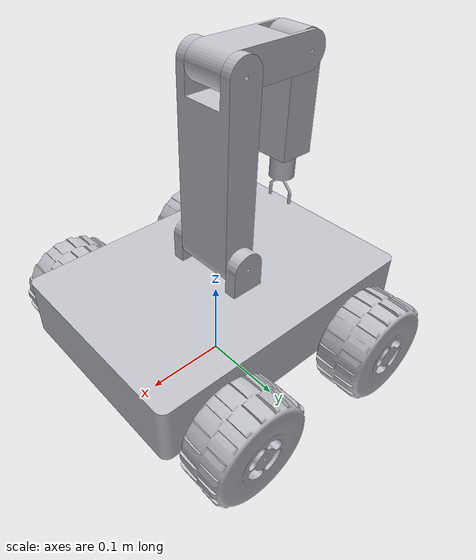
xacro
<?xml version="1.0" ?>
<robot name="robot" xmlns:xacro="http://www.ros.org/wiki/xacro">

<xacro:include filename="$(find robot_description)/urdf/materials.xacro" />
<xacro:include filename="$(find robot_description)/urdf/robot.trans" />
<xacro:include filename="$(find robot_description)/urdf/robot.gazebo" />
<link name="base_link">
  <inertial>
    <origin xyz="0.0003127797995900869 0.0014327057821856926 0.0951674253043274" rpy="0 0 0"/>
    <mass value="7.008262743982289"/>
    <inertia ixx="0.040031" iyy="0.07458" izz="0.10706" ixy="-0.0" iyz="0.0" ixz="-0.0"/>
  </inertial>
  <visual>
    <origin xyz="0 0 0" rpy="0 0 0"/>
    <geometry>
      <mesh filename="package://robot_description/meshes/base_link.stl" scale="0.001 0.001 0.001"/>
    </geometry>
    <material name="silver"/>
  </visual>
  <collision>
    <origin xyz="0 0 0" rpy="0 0 0"/>
    <geometry>
      <mesh filename="package://robot_description/meshes/base_link.stl" scale="0.001 0.001 0.001"/>
    </geometry>
  </collision>
</link>

<link name="link2_1">
  <inertial>
    <origin xyz="-0.03229264415707544 -0.025000294217811414 -0.00034814089413653937" rpy="0 0 0"/>
    <mass value="1.4547119584951695"/>
    <inertia ixx="0.000525" iyy="0.001495" izz="0.00165" ixy="0.0" iyz="-0.0" ixz="-1.2e-05"/>
  </inertial>
  <visual>
    <origin xyz="0.001951 -0.026433 -0.367671" rpy="0 0 0"/>
    <geometry>
      <mesh filename="package://robot_description/meshes/link2_1.stl" scale="0.001 0.001 0.001"/>
    </geometry>
    <material name="silver"/>
  </visual>
  <collision>
    <origin xyz="0.001951 -0.026433 -0.367671" rpy="0 0 0"/>
    <geometry>
      <mesh filename="package://robot_description/meshes/link2_1.stl" scale="0.001 0.001 0.001"/>
    </geometry>
  </collision>
</link>

<link name="link3_1">
  <inertial>
    <origin xyz="0.0004440114557990038 -0.021100294217810664 -0.04120921448902315" rpy="0 0 0"/>
    <mass value="1.3348529203290616"/>
    <inertia ixx="0.002173" iyy="0.00219" izz="0.000438" ixy="-0.0" iyz="-0.0" ixz="1.9e-05"/>
  </inertial>
  <visual>
    <origin xyz="0.101945 -0.022433 -0.366593" rpy="0 0 0"/>
    <geometry>
      <mesh filename="package://robot_description/meshes/link3_1.stl" scale="0.001 0.001 0.001"/>
    </geometry>
    <material name="silver"/>
  </visual>
  <collision>
    <origin xyz="0.101945 -0.022433 -0.366593" rpy="0 0 0"/>
    <geometry>
      <mesh filename="package://robot_description/meshes/link3_1.stl" scale="0.001 0.001 0.001"/>
    </geometry>
  </collision>
</link>

<link name="efector_final_v6_1">
  <inertial>
    <origin xyz="0.0005770733659765659 -2.9421638739245484e-07 -0.05355220008651834" rpy="0 0 0"/>
    <mass value="0.07732126904271316"/>
    <inertia ixx="7.9e-05" iyy="7.9e-05" izz="8e-06" ixy="-0.0" iyz="0.0" ixz="1e-06"/>
  </inertial>
  <visual>
    <origin xyz="0.101503 -0.001333 -0.325595" rpy="0 0 0"/>
    <geometry>
      <mesh filename="package://robot_description/meshes/efector_final_v6_1.stl" scale="0.001 0.001 0.001"/>
    </geometry>
    <material name="silver"/>
  </visual>
  <collision>
    <origin xyz="0.101503 -0.001333 -0.325595" rpy="0 0 0"/>
    <geometry>
      <mesh filename="package://robot_description/meshes/efector_final_v6_1.stl" scale="0.001 0.001 0.001"/>
    </geometry>
  </collision>
</link>

<link name="link1_1">
  <inertial>
    <origin xyz="-0.0009802435587231363 -0.037500294217812744 0.090904175831996" rpy="0 0 0"/>
    <mass value="4.957865445681325"/>
    <inertia ixx="0.022105" iyy="0.020243" izz="0.003158" ixy="-0.0" iyz="0.0" ixz="0.000204"/>
  </inertial>
  <visual>
    <origin xyz="-0.000313 -0.038933 -0.157683" rpy="0 0 0"/>
    <geometry>
      <mesh filename="package://robot_description/meshes/link1_1.stl" scale="0.001 0.001 0.001"/>
    </geometry>
    <material name="silver"/>
  </visual>
  <collision>
    <origin xyz="-0.000313 -0.038933 -0.157683" rpy="0 0 0"/>
    <geometry>
      <mesh filename="package://robot_description/meshes/link1_1.stl" scale="0.001 0.001 0.001"/>
    </geometry>
  </collision>
</link>

<link name="rueda_v6__2__1">
  <inertial>
    <origin xyz="-3.8017618496366534e-07 0.030007553460228265 2.3750010800604383e-07" rpy="0 0 0"/>
    <mass value="0.24963094558243556"/>
    <inertia ixx="0.000325" iyy="0.000482" izz="0.000325" ixy="0.0" iyz="0.0" ixz="0.0"/>
  </inertial>
  <visual>
    <origin xyz="-0.100313 -0.126433 -0.062683" rpy="0 0 0"/>
    <geometry>
      <mesh filename="package://robot_description/meshes/rueda_v6__2__1.stl" scale="0.001 0.001 0.001"/>
    </geometry>
    <material name="silver"/>
  </visual>
  <collision>
    <origin xyz="-0.100313 -0.126433 -0.062683" rpy="0 0 0"/>
    <geometry>
      <mesh filename="package://robot_description/meshes/rueda_v6__2__1.stl" scale="0.001 0.001 0.001"/>
    </geometry>
  </collision>
</link>

<link name="rueda_v6__1__1">
  <inertial>
    <origin xyz="-3.8217626732728327e-07 0.030007553460233594 3.949807601683064e-07" rpy="0 0 0"/>
    <mass value="0.24963094558243573"/>
    <inertia ixx="0.000325" iyy="0.000482" izz="0.000325" ixy="0.0" iyz="-0.0" ixz="-0.0"/>
  </inertial>
  <visual>
    <origin xyz="0.099687 -0.126433 -0.062683" rpy="0 0 0"/>
    <geometry>
      <mesh filename="package://robot_description/meshes/rueda_v6__1__1.stl" scale="0.001 0.001 0.001"/>
    </geometry>
    <material name="silver"/>
  </visual>
  <collision>
    <origin xyz="0.099687 -0.126433 -0.062683" rpy="0 0 0"/>
    <geometry>
      <mesh filename="package://robot_description/meshes/rueda_v6__1__1.stl" scale="0.001 0.001 0.001"/>
    </geometry>
  </collision>
</link>

<link name="rueda_v6__4__1">
  <inertial>
    <origin xyz="-1.870377545482027e-07 -0.030008141895863413 -4.469378613036756e-08" rpy="0 0 0"/>
    <mass value="0.24963094558243856"/>
    <inertia ixx="0.000325" iyy="0.000482" izz="0.000325" ixy="-0.0" iyz="-0.0" ixz="0.0"/>
  </inertial>
  <visual>
    <origin xyz="-0.100313 0.123567 -0.062683" rpy="0 0 0"/>
    <geometry>
      <mesh filename="package://robot_description/meshes/rueda_v6__4__1.stl" scale="0.001 0.001 0.001"/>
    </geometry>
    <material name="silver"/>
  </visual>
  <collision>
    <origin xyz="-0.100313 0.123567 -0.062683" rpy="0 0 0"/>
    <geometry>
      <mesh filename="package://robot_description/meshes/rueda_v6__4__1.stl" scale="0.001 0.001 0.001"/>
    </geometry>
  </collision>
</link>

<link name="rueda_v6__3__1">
  <inertial>
    <origin xyz="-4.6450394160235664e-07 -0.030008141895858223 1.4778860908670755e-07" rpy="0 0 0"/>
    <mass value="0.24963094558243595"/>
    <inertia ixx="0.000325" iyy="0.000482" izz="0.000325" ixy="-0.0" iyz="0.0" ixz="-0.0"/>
  </inertial>
  <visual>
    <origin xyz="0.099687 0.123567 -0.062683" rpy="0 0 0"/>
    <geometry>
      <mesh filename="package://robot_description/meshes/rueda_v6__3__1.stl" scale="0.001 0.001 0.001"/>
    </geometry>
    <material name="silver"/>
  </visual>
  <collision>
    <origin xyz="0.099687 0.123567 -0.062683" rpy="0 0 0"/>
    <geometry>
      <mesh filename="package://robot_description/meshes/rueda_v6__3__1.stl" scale="0.001 0.001 0.001"/>
    </geometry>
  </collision>
</link>

<joint name="revolucion4" type="revolute">
  <origin xyz="-0.002264 -0.0125 0.209988" rpy="0 0 0"/>
  <parent link="link1_1"/>
  <child link="link2_1"/>
  <axis xyz="0.0 -1.0 0.0"/>
  <limit upper="0.261799" lower="-3.141593" effort="100" velocity="100"/>
</joint>

<joint name="revolucion5" type="revolute">
  <origin xyz="-0.099994 -0.004 -0.001078" rpy="0 0 0"/>
  <parent link="link2_1"/>
  <child link="link3_1"/>
  <axis xyz="-0.0 -1.0 0.0"/>
  <limit upper="0.261799" lower="-3.141593" effort="100" velocity="100"/>
</joint>

<joint name="corredera7" type="prismatic">
  <origin xyz="0.000442 -0.0211 -0.040998" rpy="0 0 0"/>
  <parent link="link3_1"/>
  <child link="efector_final_v6_1"/>
  <axis xyz="0.01078 0.0 -0.999942"/>
  <limit upper="0.05" lower="0.0" effort="100" velocity="100"/>
</joint>

<joint name="revolucion12" type="revolute">
  <origin xyz="0.000313 0.038933 0.157683" rpy="0 0 0"/>
  <parent link="base_link"/>
  <child link="link1_1"/>
  <axis xyz="0.0 -1.0 0.0"/>
  <limit upper="0.959931" lower="-0.959931" effort="100" velocity="100"/>
</joint>

<joint name="revolucion13" type="continuous">
  <origin xyz="0.100313 0.126433 0.062683" rpy="0 0 0"/>
  <parent link="base_link"/>
  <child link="rueda_v6__2__1"/>
  <axis xyz="-0.0 1.0 -0.0"/>
</joint>

<joint name="revolucion14" type="continuous">
  <origin xyz="-0.099687 0.126433 0.062683" rpy="0 0 0"/>
  <parent link="base_link"/>
  <child link="rueda_v6__1__1"/>
  <axis xyz="-0.0 1.0 -0.0"/>
</joint>

<joint name="revolucion15" type="continuous">
  <origin xyz="0.100313 -0.123567 0.062683" rpy="0 0 0"/>
  <parent link="base_link"/>
  <child link="rueda_v6__4__1"/>
  <axis xyz="-0.0 1.0 -0.0"/>
</joint>

<joint name="revolucion16" type="continuous">
  <origin xyz="-0.099687 -0.123567 0.062683" rpy="0 0 0"/>
  <parent link="base_link"/>
  <child link="rueda_v6__3__1"/>
  <axis xyz="-0.0 1.0 -0.0"/>
</joint>

</robot>

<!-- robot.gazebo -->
<robot name="robot" xmlns:xacro="http://www.ros.org/wiki/xacro" >

<xacro:property name="body_color" value="Gazebo/Silver" />

<gazebo>
  <static>false</static>
  <plugin name="gazebo_ros_control" filename="libgazebo_ros_control.so">
    <robotNamespace>/mugator_manip</robotNamespace>
    <robotSimType>gazebo_ros_control/DefaultRobotHWSim</robotSimType>
    <legacyModeNS>true</legacyModeNS>
  </plugin>
</gazebo>

<gazebo reference="base_link">
  <material>${body_color}</material>
  <mu1>0.2</mu1>
  <mu2>0.2</mu2>
</gazebo>

<gazebo reference="link2_1">
  <material>${body_color}</material>
  <mu1>0.2</mu1>
  <mu2>0.2</mu2>
</gazebo>

<gazebo reference="link3_1">
  <material>${body_color}</material>
  <mu1>0.2</mu1>
  <mu2>0.2</mu2>
</gazebo>

<gazebo reference="efector_final_v6_1">
  <material>${body_color}</material>
  <mu1>0.2</mu1>
  <mu2>0.2</mu2>
</gazebo>

<gazebo reference="link1_1">
  <material>${body_color}</material>
  <mu1>0.2</mu1>
  <mu2>0.2</mu2>
</gazebo>

<gazebo reference="rueda_v6__2__1">
  <material>${body_color}</material>
  <mu1>0.2</mu1>
  <mu2>0.2</mu2>
  <kp>500000.0</kp>
  <kd>10.0</kd>
  <minDepth>0.001</minDepth>
  <maxVel>0.1</maxVel>
  <fdir1>0 1 0</fdir1>
</gazebo>

<gazebo reference="rueda_v6__1__1">
  <material>${body_color}</material>
  <mu1>0.2</mu1>
  <mu2>0.2</mu2>
  <kp>1000000.0</kp>
  <kd>100.0</kd>
  <minDepth>0.001</minDepth>
  <maxVel>1.0</maxVel>
  <fdir1>0 1 0</fdir1>
</gazebo>

<gazebo reference="rueda_v6__4__1">
  <material>${body_color}</material>
  <mu1>0.2</mu1>
  <mu2>0.2</mu2>
  <kp>500000.0</kp>
  <kd>10.0</kd>
  <minDepth>0.001</minDepth>
  <maxVel>0.1</maxVel>
  <fdir1>0 1 0</fdir1>
</gazebo>

<gazebo reference="rueda_v6__3__1">
  <material>${body_color}</material>
  <mu1>0.2</mu1>
  <mu2>0.2</mu2>
  <kp>1000000.0</kp>
  <kd>100.0</kd>
  <minDepth>0.001</minDepth>
  <maxVel>1.0</maxVel>
  <fdir1>0 1 0</fdir1>
</gazebo>

  <gazebo>
    <plugin name='skid_steer_drive' filename='libgazebo_ros_skid_steer_drive.so'>
      <updateRate>10</updateRate>
      <leftFrontJoint>revolucion16</leftFrontJoint>
      <rightFrontJoint>revolucion14</rightFrontJoint>
      <leftRearJoint>revolucion15</leftRearJoint>
      <rightRearJoint>revolucion13</rightRearJoint>
      <robotBaseFrame>base_link</robotBaseFrame>
      <covariance_x>0.0001</covariance_x>
      <covariance_y>0.0001</covariance_y>
      <covariance_yaw>0.01</covariance_yaw>
      <wheelSeparation>0.25</wheelSeparation>
      <wheelDiameter>0.118</wheelDiameter>
      <torque>20</torque>
      <commandTopic>cmd_vel</commandTopic>
      <odometryTopic>odom</odometryTopic>
      <odometryFrame>odom</odometryFrame>
      <broadcastTF>true</broadcastTF>
    </plugin>
  </gazebo>

</robot>
